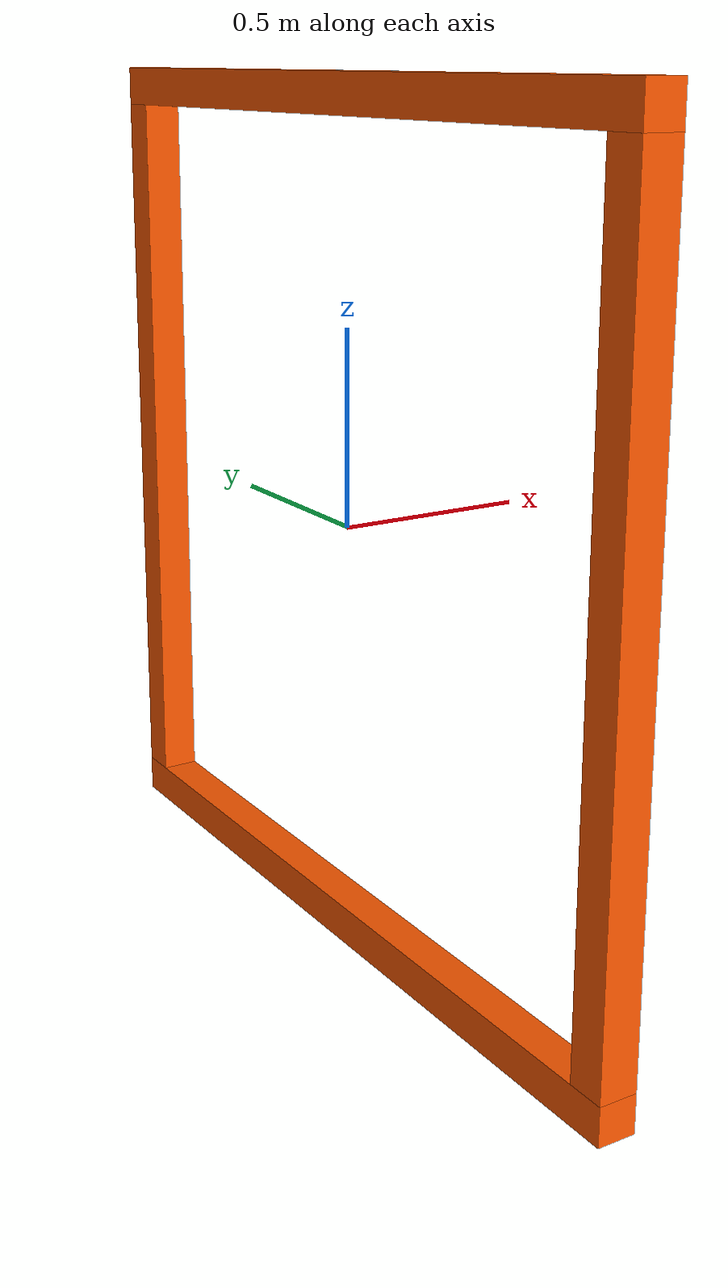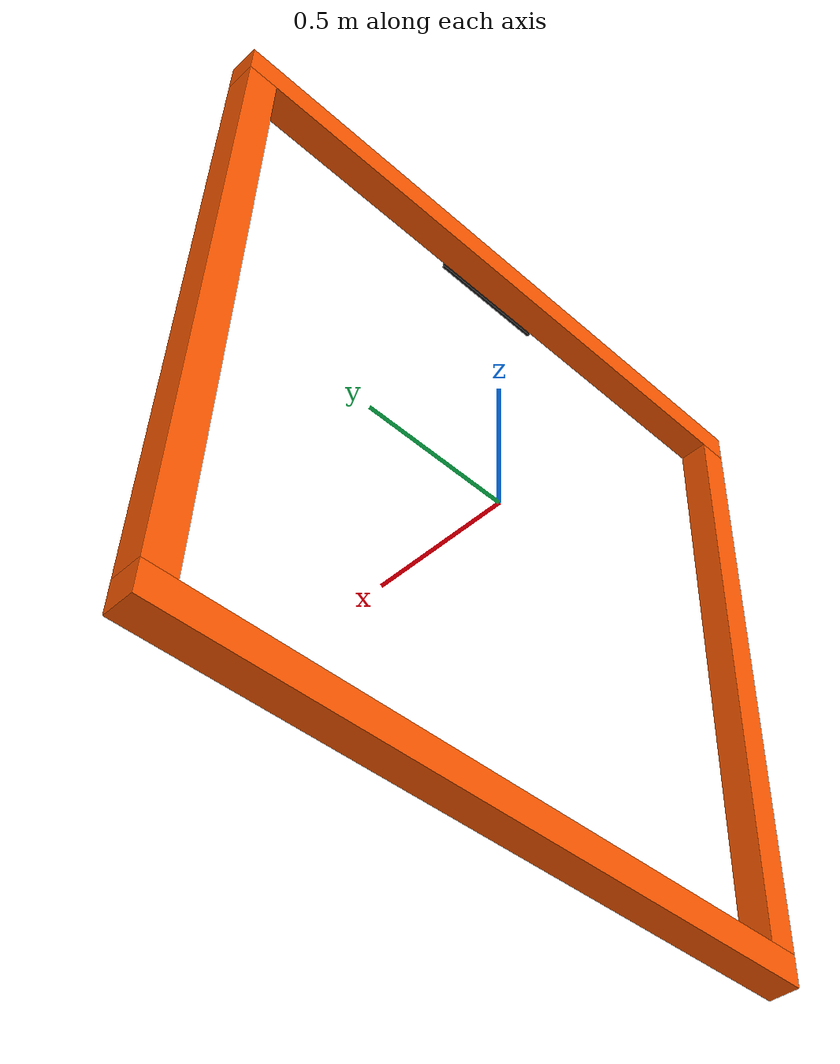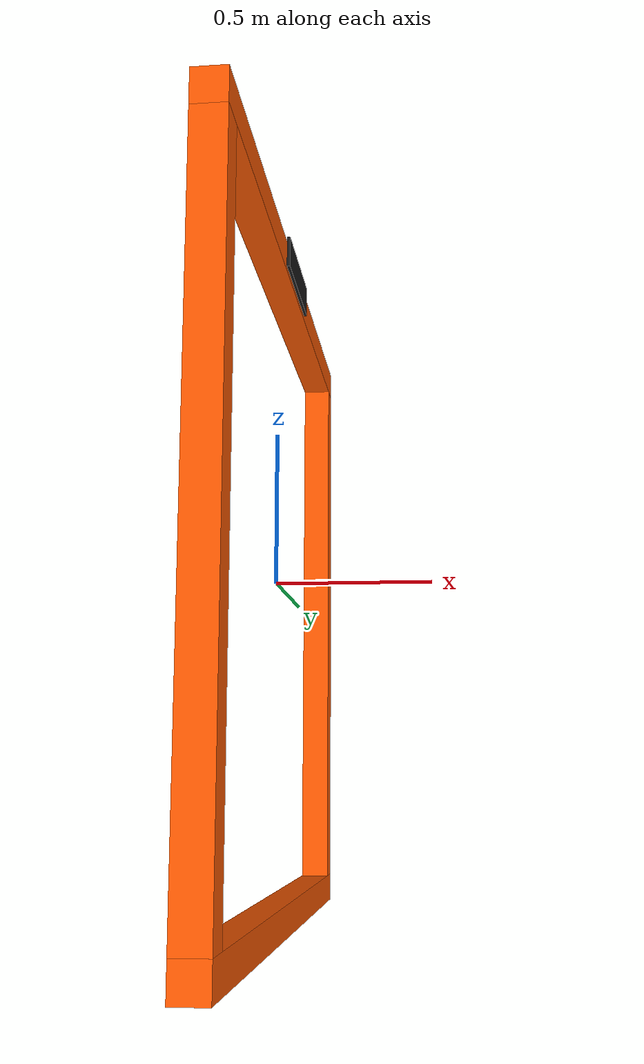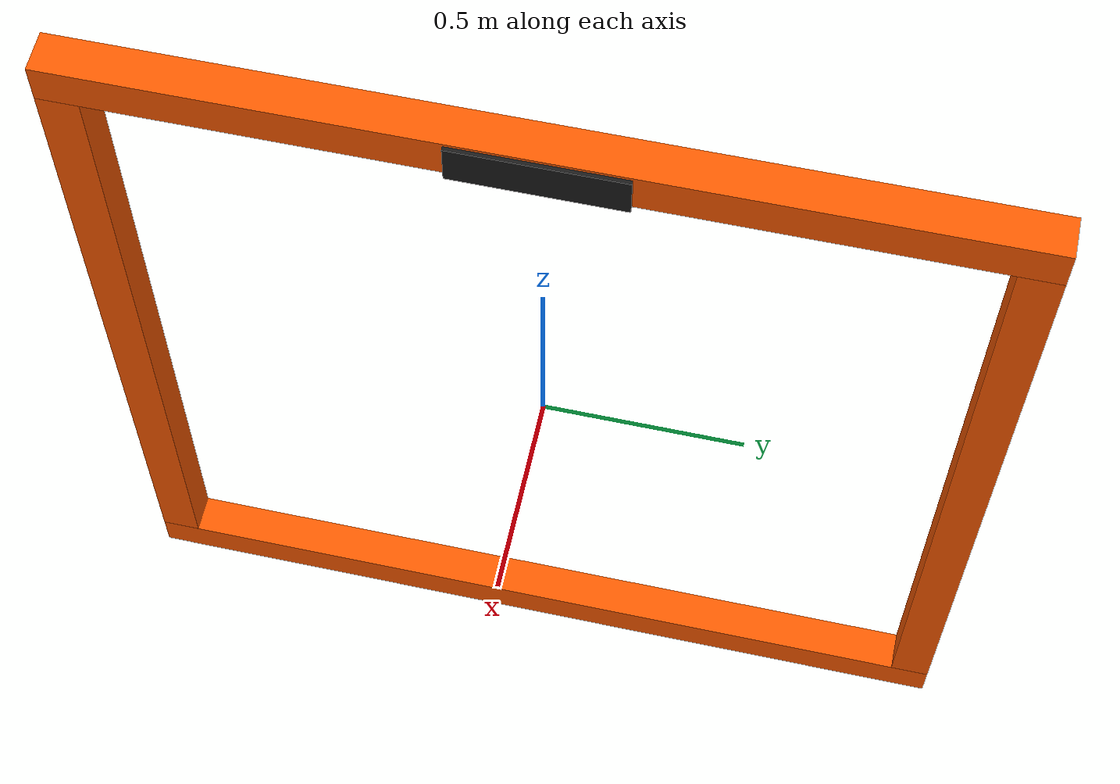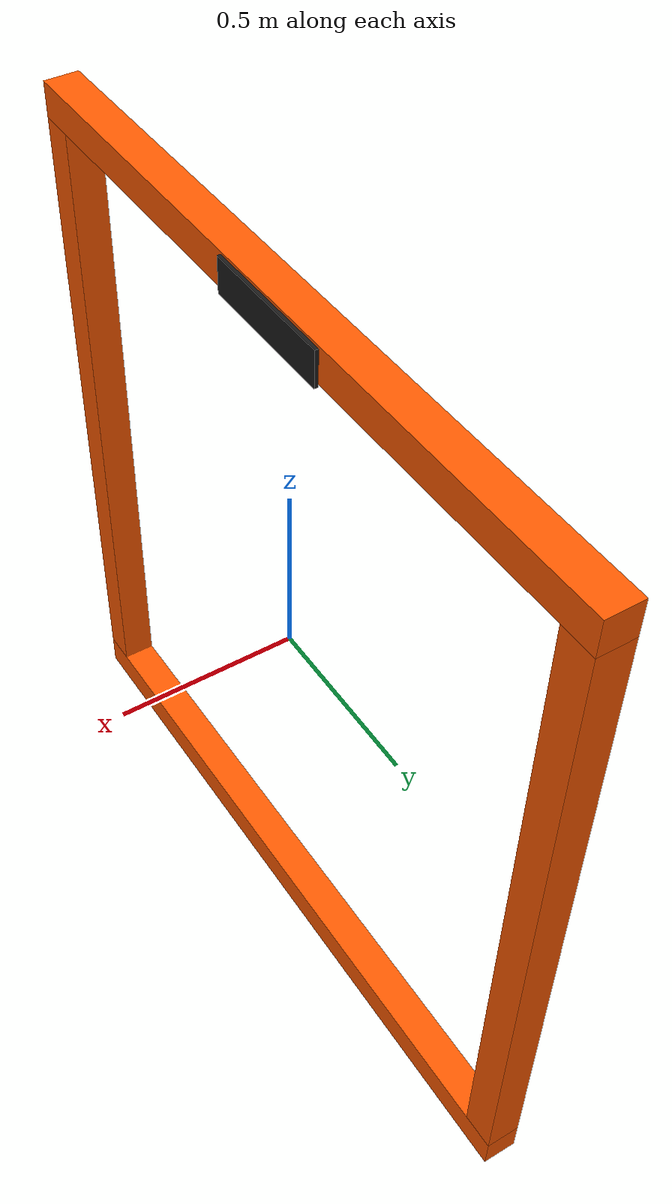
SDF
<?xml version="1.0"?>
<sdf version="1.6">
  <model name="aerial_gate">
    <static>true</static>
    <link name="left_post">
      <pose>0 -1.05 0 0 0 0</pose>
      <visual name="visual">
        <geometry>
          <box><size>0.1 0.1 2.0</size></box>
        </geometry>
        <material>
          <ambient>1.0 0.35 0.0 1</ambient>
          <diffuse>1.0 0.35 0.0 1</diffuse>
          <specular>0.3 0.3 0.3 1</specular>
        </material>
      </visual>
      <collision name="collision">
        <geometry>
          <box><size>0.1 0.1 2.0</size></box>
        </geometry>
      </collision>
    </link>
    <link name="right_post">
      <pose>0 1.05 0 0 0 0</pose>
      <visual name="visual">
        <geometry>
          <box><size>0.1 0.1 2.0</size></box>
        </geometry>
        <material>
          <ambient>1.0 0.35 0.0 1</ambient>
          <diffuse>1.0 0.35 0.0 1</diffuse>
          <specular>0.3 0.3 0.3 1</specular>
        </material>
      </visual>
      <collision name="collision">
        <geometry>
          <box><size>0.1 0.1 2.0</size></box>
        </geometry>
      </collision>
    </link>
    <link name="top_bar">
      <pose>0 0 1.05 0 0 0</pose>
      <visual name="visual">
        <geometry>
          <box><size>0.1 2.2 0.1</size></box>
        </geometry>
        <material>
          <ambient>1.0 0.35 0.0 1</ambient>
          <diffuse>1.0 0.35 0.0 1</diffuse>
          <specular>0.3 0.3 0.3 1</specular>
        </material>
      </visual>
      <collision name="collision">
        <geometry>
          <box><size>0.1 2.2 0.1</size></box>
        </geometry>
      </collision>
    </link>
    <link name="bottom_bar">
      <pose>0 0 -1.05 0 0 0</pose>
      <visual name="visual">
        <geometry>
          <box><size>0.1 2.2 0.1</size></box>
        </geometry>
        <material>
          <ambient>1.0 0.35 0.0 1</ambient>
          <diffuse>1.0 0.35 0.0 1</diffuse>
          <specular>0.3 0.3 0.3 1</specular>
        </material>
      </visual>
      <collision name="collision">
        <geometry>
          <box><size>0.1 2.2 0.1</size></box>
        </geometry>
      </collision>
    </link>
    <link name="number_plate">
      <pose>0.06 0 1.05 0 0 0</pose>
      <visual name="visual">
        <geometry>
          <box><size>0.01 0.4 0.1</size></box>
        </geometry>
        <material>
          <ambient>0.1 0.1 0.1 1</ambient>
          <diffuse>0.1 0.1 0.1 1</diffuse>
        </material>
      </visual>
    </link>
  </model>
</sdf>
